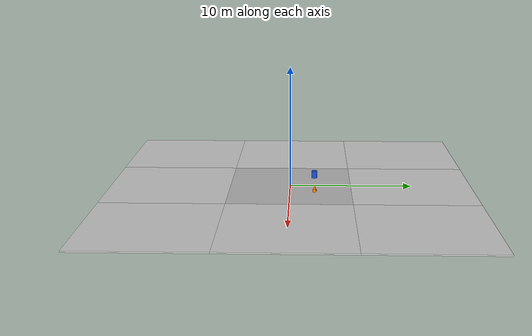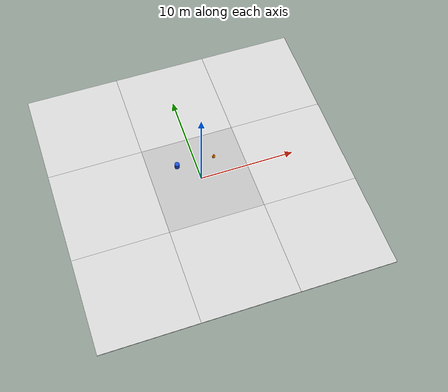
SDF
<?xml version="1.0" ?>
<sdf version="1.9">
  <world name="template">

    <!-- System plugins -->
    <plugin name='ignition::gazebo::systems::Physics'           filename='ignition-gazebo-physics-system'/>
    <plugin name='ignition::gazebo::systems::UserCommands'      filename='ignition-gazebo-user-commands-system'/>
    <plugin name='ignition::gazebo::systems::SceneBroadcaster'  filename='ignition-gazebo-scene-broadcaster-system'/>
    <plugin name="ignition::gazebo::systems::Contact"           filename="libignition-gazebo-contact-system.so"/>
    <plugin name="ignition::gazebo::systems::Sensors"           filename="ignition-gazebo-sensors-system"/>
    <plugin name="ignition::gazebo::systems::Imu"               filename="ignition-gazebo-imu-system"/>
    <plugin name="ignition::gazebo::systems::NavSat"            filename="ignition-gazebo-navsat-system" />

    <physics type="ode">
      <max_step_size>0.001</max_step_size>
      <real_time_update_rate>1000</real_time_update_rate>
    </physics>

    <scene>
      <ambient>0.1 0.1 0.1 0.1</ambient>
      <background>0.8 0.8 0.8 1.0</background>
      <grid>true</grid>
    </scene>

    <light type="directional" name="sun">
      <cast_shadows>true</cast_shadows>
      <pose>0 0 10 0 0 0</pose>
      <diffuse>1 1 1 1</diffuse>
      <specular>0.2 0.2 0.2 1</specular>
      <direction>-0.5 0.1 -0.9</direction>
    </light>

    <!-- Course (centered) and bounding tiles so no cliffs-->
    <include> <uri>model://floor</uri> <pose>0 0 0 0 0 0</pose> </include>
    <include> <uri>model://floor_boundary</uri> <name>n</name> <pose>10 0 0 0 0 0</pose>  </include>
    <include> <uri>model://floor_boundary</uri> <name>s</name> <pose>-10 0 0 0 0 0</pose>  </include>
    <include> <uri>model://floor_boundary</uri> <name>e</name> <pose>0 10 0 0 0 0</pose> </include>
    <include> <uri>model://floor_boundary</uri> <name>w</name> <pose>0 -10 0 0 0 0</pose> </include>
    <include> <uri>model://floor_boundary</uri> <name>ne</name> <pose>10 10 0 0 0 0</pose> </include>
    <include> <uri>model://floor_boundary</uri> <name>nw</name> <pose>10 -10 0 0 0 0</pose> </include>
    <include> <uri>model://floor_boundary</uri> <name>se</name> <pose>-10 10 0 0 0 0</pose> </include>
    <include> <uri>model://floor_boundary</uri> <name>sw</name> <pose>-10 -10 0 0 0 0</pose> </include>

    <gui fullscreen='0'>
      <camera name='user_camera'>
        <pose>-4 -16 4 0 0.3 1.2</pose>
        <view_controller>orbit</view_controller>
      </camera>
    </gui>

    <include>
      <uri>model://cone</uri>
      <name>cone_1</name> <!-- Needs a unique identifier-->
      <pose>2 2 0.1 0 0 0</pose>
    </include>

    <include>
      <uri>model://barrel</uri>
      <name>barrel_1</name> <!-- Needs a unique identifier-->
      <pose>-2 2 0.1 0 0 0</pose>
    </include>

  </world>
</sdf>

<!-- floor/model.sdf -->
<sdf version="1.6">
  <model name="custom_course">
    <static>true</static>
    <link name="link">
      <collision name="collision">
        <geometry>
          <box>
            <size>10 10 0.1</size> <!-- PUT YOUR COURSE SIZE HERE IN METERS -->
          </box>
        </geometry>
      </collision>
      <visual name="visual">
        <geometry>
          <box>
            <size>10 10 0.1</size> <!-- PUT YOUR COURSE SIZE HERE IN METERS -->
          </box>
        </geometry>
        <material>
          <script>
            <uri>model://floor/materials/scripts</uri>
            <uri>model://floor/materials/textures</uri>
            <name>CustomCourse/Diffuse</name>
          </script>
        </material>
      </visual>
    </link>
  </model>
</sdf>

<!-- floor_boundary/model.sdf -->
<sdf version="1.9">
  <model name="floor_boundary">
    <static>true</static>
    <link name="course_floor">
      <collision name="floor_collision">
        <geometry>
          <box>
            <size>10 10 0.095</size>
          </box>
        </geometry>
      </collision>

      <visual name="visual">
        <geometry>
          <box>
            <size>10 10 0.1</size>
          </box>
        </geometry>

        <material>
          <ambient>0.1 0.1 0.1 1</ambient>
          <diffuse>0.8 0.8 0.8 1</diffuse>
          <specular>0.1 0.1 0.1 1</specular>

          <pbr>
            <metal>
              <albedo_map>materials/textures/blank_floor.png</albedo_map>
              <roughness>0.9</roughness>
              <metalness>0.0</metalness>
            </metal>
          </pbr>
        </material>

      </visual>
    </link>
  </model>
</sdf>

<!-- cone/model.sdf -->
<sdf version="1.8">
  <model name="cone">
    <static>true</static>
    <link name="link">
      <!-- Base cylinder (wider bottom) -->
      <collision name="collision_base">
        <geometry>
          <cylinder>
            <radius>0.15</radius>
            <length>0.22</length>
          </cylinder>
        </geometry>
        <pose>0 0 0.11 0 0 0</pose>
      </collision>
      <visual name="visual_base">
        <geometry>
          <cylinder>
            <radius>0.15</radius>
            <length>0.22</length>
          </cylinder>
        </geometry>
        <pose>0 0 0.11 0 0 0</pose>
        <material>
          <ambient>1.0 0.5 0.0 1</ambient>
          <diffuse>1.0 0.5 0.0 1</diffuse>
          <specular>0.3 0.3 0.3 1</specular>
        </material>
      </visual>
      <!-- Top cylinder (narrower top) -->
      <collision name="collision_top">
        <geometry>
          <cylinder>
            <radius>0.07</radius>
            <length>0.23</length>
          </cylinder>
        </geometry>
        <pose>0 0 0.335 0 0 0</pose>
      </collision>
      <visual name="visual_top">
        <geometry>
          <cylinder>
            <radius>0.07</radius>
            <length>0.23</length>
          </cylinder>
        </geometry>
        <pose>0 0 0.335 0 0 0</pose>
        <material>
          <ambient>1.0 0.5 0.0 1</ambient>
          <diffuse>1.0 0.5 0.0 1</diffuse>
          <specular>0.3 0.3 0.3 1</specular>
        </material>
      </visual>
    </link>
  </model>
</sdf>

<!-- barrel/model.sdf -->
<sdf version="1.8">
  <model name="barrel">
    <static>true</static>
    <link name="link">
      <collision name="collision">
        <geometry>
          <cylinder>
            <radius>0.25</radius>
            <length>0.6</length>
          </cylinder>
        </geometry>
        <pose>0 0 0.3 0 0 0</pose>
      </collision>
      <visual name="visual">
        <geometry>
          <cylinder>
            <radius>0.25</radius>
            <length>0.6</length>
          </cylinder>
        </geometry>
        <pose>0 0 0.3 0 0 0</pose>
        <material>
          <ambient>0.1 0.3 0.8 1</ambient>
          <diffuse>0.1 0.3 0.8 1</diffuse>
          <specular>0.3 0.3 0.3 1</specular>
        </material>
      </visual>
    </link>
  </model>
</sdf>
